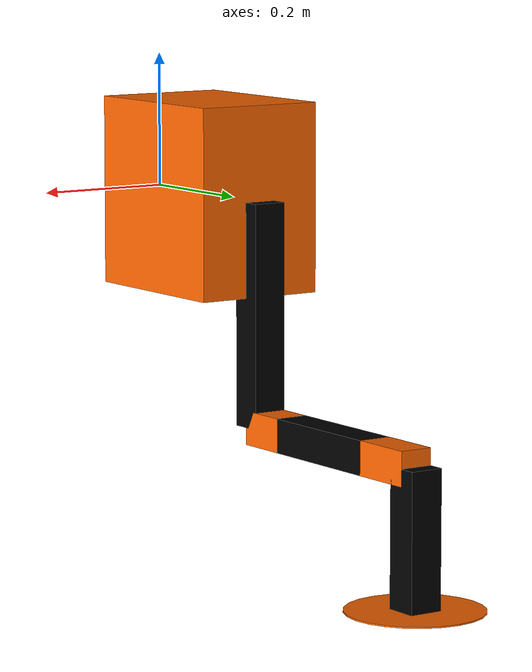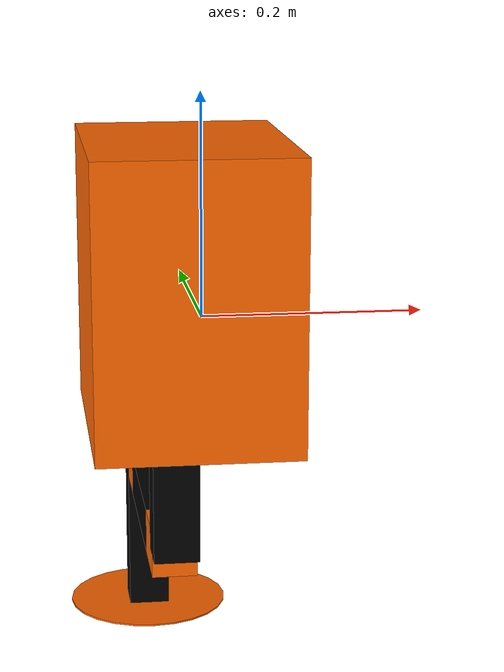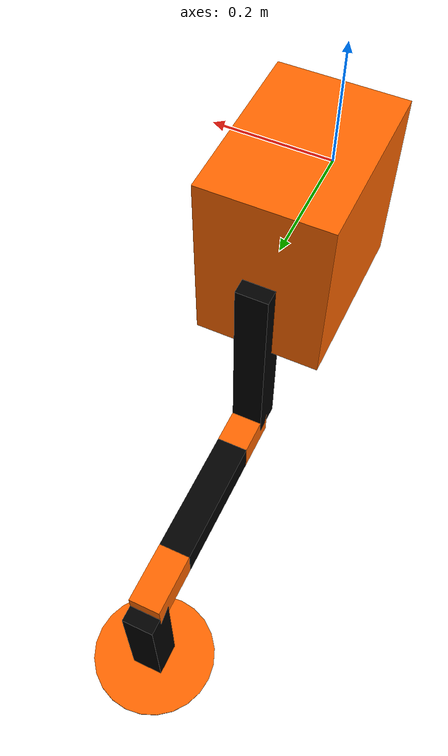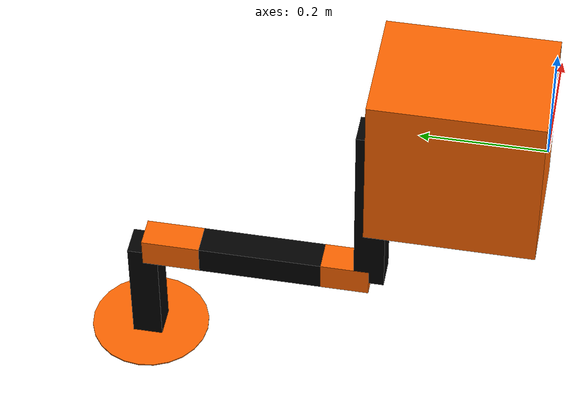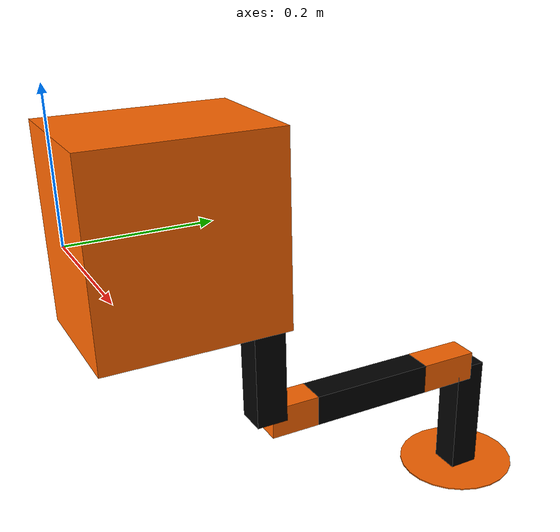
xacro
<?xml version="1.0"?>
<robot xmlns:xacro="http://www.ros.org/wiki/xacro" name="unist_manipulator5a">
    <material name="black">
        <color rgba="0.0 0.0 0.0 1.0"/>
    </material>
    <material name="orange">
        <color rgba="1.0 0.4 0.0 1.0"/>
    </material>

    <link name="world"/>>

    <joint name="fixed" type="fixed">
        <parent link="world"/>
        <child link="base_link"/>
    </joint>

    <link name="base_link">

        <visual>
            <origin xyz="0.0 0.135 0.0" rpy="0.0 0.0 0.0"/>
            <geometry>
                <box size ="0.196 0.27 0.28" />
            </geometry>
            <material name="orange"/>
        </visual>
    </link>

    <joint name="Joint1" type="revolute">
        <origin xyz="0.0 0.27 0.0" rpy="0.0 0.0 0.0" />
        <parent link="base_link"/>
        <child link="link_1"/>
        <axis xyz="1.0 0.0 0.0"/>
        <limit effort="1.91" lower="-1.57" upper="1.57" velocity="1.0"/>
    </joint>

    <link name="link_1">
        <visual>
            <origin xyz="0.0 0.0 -0.165" rpy="0.0 0.0 0.0" />
            <geometry>
                <box size="0.05 0.05 -0.33"/>
            </geometry>
            <material name="black"/>
        </visual>
    </link>

    <joint name="Joint2" type="revolute">
        <origin xyz="0.0 0.0 -0.33" rpy="0.0 0.0 0.0" />
        <parent link="link_1"/>
        <child link="link_2"/>
        <axis xyz="1.0 0.0 0.0"/>
        <limit effort="1.91" lower="-1.57" upper="1.57" velocity="1.0"/>
    </joint>

    <link name="link_2">
        <visual>
            <origin xyz="0.0 0.04 0" rpy="0.0 0.0 0.0" />
            <geometry>
                <box size="0.05 0.08 0.05"/>
            </geometry>
            <material name="orange"/>
        </visual>
    </link>

    <joint name="Joint_3" type="revolute">
        <origin xyz="0.0 0.08 0.0" rpy="0.0 0.0 0.0" />
        <parent link="link_2"/>
        <child link="link_3"/>
        <axis xyz="0.0 0.0 1.0"/>
        <limit effort="1.27" lower="-1.57" upper="1.57" velocity="1.0"/>
    </joint>

    <link name="link_3">
        <visual>
            <origin xyz="0.0 0.10175 0.0" rpy="0.0 0.0 0.0" />
            <geometry>
                <box size="0.05 0.2035 0.05"/>
            </geometry>
            <material name="black"/>
        </visual>
    </link>

    <joint name="Joint_4" type="revolute">
        <origin xyz="0.0 0.2035 0.0" rpy="0.0 0.0 0.0" />
        <parent link="link_3"/>
        <child link="link_4"/>
        <axis xyz="0.0 1.0 0.0"/>
        <limit effort="0.318" lower="-3.14" upper="3.14" velocity="1.0"/>
    </joint>

    <link name="link_4">
        <visual>
            <origin xyz="0.0 0.04825 0.0" rpy="0.0 0.0 0.0" />
            <geometry>
                <box size="0.05 0.0965 0.05"/>
            </geometry>
            <material name="orange"/>
        </visual>
    </link>

    <joint name="Joint_5" type="revolute">
        <origin xyz="0.0 0.0965 0.0" rpy="0.0 0.0 0.0" />
        <parent link="link_4"/>
        <child link="link_5"/>
        <axis xyz="1.0 0.0 0.0"/>
        <limit effort="0.318" lower="-1.57" upper="1.57" velocity="1.0"/>
    </joint>

    <link name="link_5">
        <visual>
            <origin xyz="0.0 0.0 -0.1" rpy="0.0 0.0 0.0" />
            <geometry>
                <box size="0.05 0.05 0.2"/>
            </geometry>
            <material name="black"/>
        </visual>
    </link>

    <joint name="Joint_6" type="revolute">
        <origin xyz="0.0 0.0 -0.2" rpy="0.0 0.0 0.0" />
        <parent link="link_5"/>
        <child link="link_6"/>
        <axis xyz="0.0 0.0 1.0"/>
        <limit effort="3.08" lower="-3.14" upper="3.14" velocity="1.0"/>
    </joint>

    <link name="link_6">
        <visual>
            <origin xyz="0.0 0.0 -0.001" rpy="0.0 0.0 0.0" />
            <geometry>
                <cylinder length="-0.002" radius="0.1"/>
            </geometry>
            <material name="orange"/>
        </visual>
    </link>
</robot>
